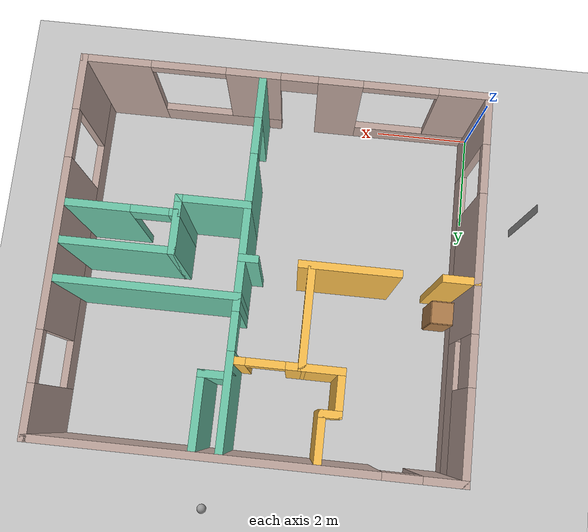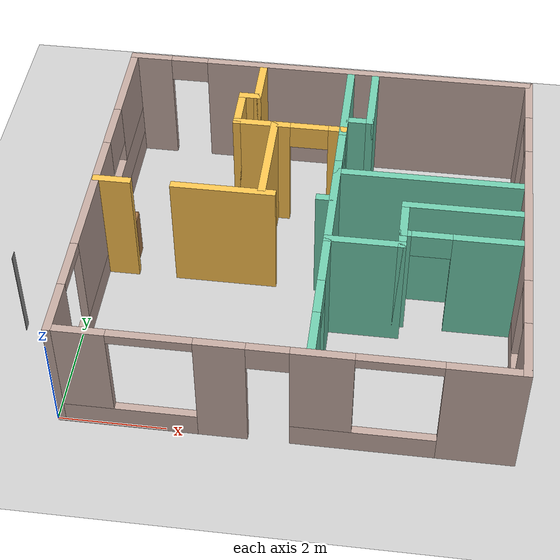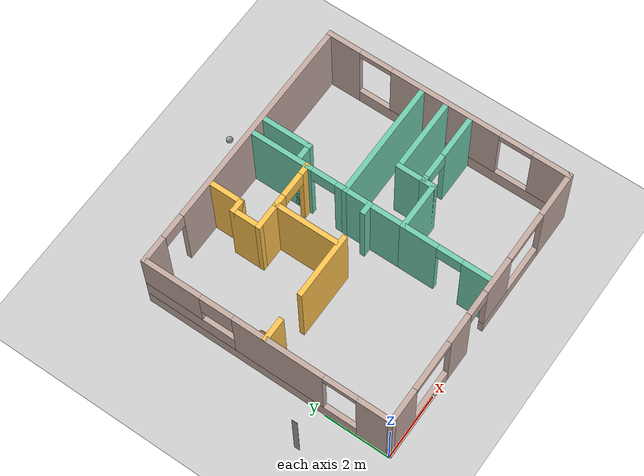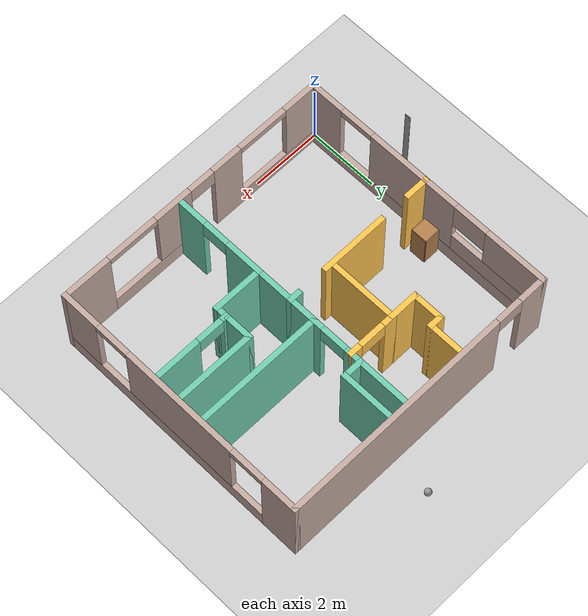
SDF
<sdf version="1.6">
 <world name="default">
  <model name="ground_plane">
   <static>1</static>
   <link name="link">
    <collision name="collision">
     <geometry><plane><normal>0 0 1</normal><size>100 100</size></plane></geometry>
     <surface>
      <contact><collide_bitmask>65535</collide_bitmask></contact>
      <friction><ode><mu>100</mu><mu2>50</mu2></ode></friction>
     </surface>
    </collision>
    <visual name="visual">
     <cast_shadows>0</cast_shadows>
     <geometry><plane><normal>0 0 1</normal><size>100 100</size></plane></geometry>
     <material>
      <script><uri>file://media/materials/scripts/gazebo.material</uri><name>Gazebo/Grey</name></script>
     </material>
    </visual>
   </link>
  </model>
  <model name="apartment">
   <pose>4.14003 3.78049 0 0 -0 0</pose>
   <link name="Door_1">
    <collision name="Door_1_Collision">
     <geometry><box><size>0.01 0.17 2</size></box></geometry>
     <pose>0 0 1 0 -0 0</pose>
    </collision>
    <visual name="Door_1_Visual">
     <pose>0 0 1 0 -0 0</pose>
     <geometry><box><size>0.01 0.17 2</size></box></geometry>
     <material>
      <script><uri>file://media/materials/scripts/gazebo.material</uri><name>Gazebo/Grey</name></script>
     </material>
    </visual>
    <pose>-5.25474 -1.71616 0 0 0 -3.11558</pose>
   </link>
   <link name="Wall_0">
    <pose>-0 3.75 0 0 -0 0</pose>
    <visual name="Wall_0_Visual_0">
     <pose>-3.7 0 1.25 0 -0 0</pose>
     <geometry><box><size>0.85 0.15 2.5</size></box></geometry>
     <material>
      <script><uri>file://media/materials/scripts/gazebo.material</uri><name>Gazebo/Grey</name></script>
      <ambient>0.760784 0.662745 0.627451 1</ambient>
     </material>
     <meta><layer>0</layer></meta>
    </visual>
    <collision name="Wall_0_Collision_0">
     <geometry><box><size>0.85 0.15 2.5</size></box></geometry>
     <pose>-3.7 0 1.25 0 -0 0</pose>
    </collision>
    <visual name="Wall_0_Visual_1">
     <pose>0.8 0 1.25 0 -0 0</pose>
     <geometry><box><size>6.65 0.15 2.5</size></box></geometry>
     <material>
      <script><uri>file://media/materials/scripts/gazebo.material</uri><name>Gazebo/Grey</name></script>
      <ambient>0.760784 0.662745 0.627451 1</ambient>
     </material>
     <meta><layer>0</layer></meta>
    </visual>
    <collision name="Wall_0_Collision_1">
     <geometry><box><size>6.65 0.15 2.5</size></box></geometry>
     <pose>0.8 0 1.25 0 -0 0</pose>
    </collision>
    <visual name="Wall_0_Visual_2">
     <pose>-2.9 0 2.25 0 -0 0</pose>
     <geometry><box><size>0.75 0.15 0.5</size></box></geometry>
     <material>
      <script><uri>file://media/materials/scripts/gazebo.material</uri><name>Gazebo/Grey</name></script>
      <ambient>0.760784 0.662745 0.627451 1</ambient>
     </material>
     <meta><layer>0</layer></meta>
    </visual>
    <collision name="Wall_0_Collision_2">
     <geometry><box><size>0.75 0.15 0.5</size></box></geometry>
     <pose>-2.9 0 2.25 0 -0 0</pose>
    </collision>
   </link>
   <link name="Wall_1">
    <pose>4.05 -0 0 0 -0 -1.5708</pose>
    <visual name="Wall_1_Visual_0">
     <pose>-3.2875 0 1.25 0 -0 0</pose>
     <geometry><box><size>1.075 0.15 2.5</size></box></geometry>
     <material>
      <script><uri>file://media/materials/scripts/gazebo.material</uri><name>Gazebo/Grey</name></script>
      <ambient>0.760784 0.662745 0.627451 1</ambient>
     </material>
     <meta><layer>0</layer></meta>
    </visual>
    <collision name="Wall_1_Collision_0">
     <geometry><box><size>1.075 0.15 2.5</size></box></geometry>
     <pose>-3.2875 0 1.25 0 -0 0</pose>
    </collision>
    <visual name="Wall_1_Visual_1">
     <pose>0.5375 0 0.25 0 -0 0</pose>
     <geometry><box><size>6.575 0.15 0.5</size></box></geometry>
     <material>
      <script><uri>file://media/materials/scripts/gazebo.material</uri><name>Gazebo/Grey</name></script>
      <ambient>0.760784 0.662745 0.627451 1</ambient>
     </material>
     <meta><layer>0</layer></meta>
    </visual>
    <collision name="Wall_1_Collision_1">
     <geometry><box><size>6.575 0.15 0.5</size></box></geometry>
     <pose>0.5375 0 0.25 0 -0 0</pose>
    </collision>
    <visual name="Wall_1_Visual_2">
     <pose>-0.050682 0 1.5 0 -0 0</pose>
     <geometry><box><size>3.39864 0.15 2</size></box></geometry>
     <material>
      <script><uri>file://media/materials/scripts/gazebo.material</uri><name>Gazebo/Grey</name></script>
      <ambient>0.760784 0.662745 0.627451 1</ambient>
     </material>
     <meta><layer>0</layer></meta>
    </visual>
    <collision name="Wall_1_Collision_2">
     <geometry><box><size>3.39864 0.15 2</size></box></geometry>
     <pose>-0.050682 0 1.5 0 -0 0</pose>
    </collision>
    <visual name="Wall_1_Visual_3">
     <pose>3.23682 0 1.5 0 -0 0</pose>
     <geometry><box><size>1.17636 0.15 2</size></box></geometry>
     <material>
      <script><uri>file://media/materials/scripts/gazebo.material</uri><name>Gazebo/Grey</name></script>
      <ambient>0.760784 0.662745 0.627451 1</ambient>
     </material>
     <meta><layer>0</layer></meta>
    </visual>
    <collision name="Wall_1_Collision_3">
     <geometry><box><size>1.17636 0.15 2</size></box></geometry>
     <pose>3.23682 0 1.5 0 -0 0</pose>
    </collision>
    <visual name="Wall_1_Visual_4">
     <pose>-2.25 0 2.4 0 -0 0</pose>
     <geometry><box><size>1 0.15 0.2</size></box></geometry>
     <material>
      <script><uri>file://media/materials/scripts/gazebo.material</uri><name>Gazebo/Grey</name></script>
      <ambient>0.760784 0.662745 0.627451 1</ambient>
     </material>
     <meta><layer>0</layer></meta>
    </visual>
    <collision name="Wall_1_Collision_4">
     <geometry><box><size>1 0.15 0.2</size></box></geometry>
     <pose>-2.25 0 2.4 0 -0 0</pose>
    </collision>
    <visual name="Wall_1_Visual_5">
     <pose>2.14864 0 2.4 0 -0 0</pose>
     <geometry><box><size>1 0.15 0.2</size></box></geometry>
     <material>
      <script><uri>file://media/materials/scripts/gazebo.material</uri><name>Gazebo/Grey</name></script>
      <ambient>0.760784 0.662745 0.627451 1</ambient>
     </material>
     <meta><layer>0</layer></meta>
    </visual>
    <collision name="Wall_1_Collision_5">
     <geometry><box><size>1 0.15 0.2</size></box></geometry>
     <pose>2.14864 0 2.4 0 -0 0</pose>
    </collision>
   </link>
   <link name="Wall_10">
    <collision name="Wall_10_Collision">
     <geometry><box><size>0.9 0.15 2.5</size></box></geometry>
     <pose>0 0 1.25 0 -0 0</pose>
    </collision>
    <visual name="Wall_10_Visual">
     <pose>0 0 1.25 0 -0 0</pose>
     <geometry><box><size>0.9 0.15 2.5</size></box></geometry>
     <material>
      <script><uri>file://media/materials/scripts/gazebo.material</uri><name>Gazebo/Grey</name></script>
      <ambient>0.435294 0.796078 0.67451 1</ambient>
     </material>
     <meta><layer>0</layer></meta>
    </visual>
    <pose>1.8 -0.375 0 0 -0 1.5708</pose>
   </link>
   <link name="Wall_11">
    <collision name="Wall_11_Collision">
     <geometry><box><size>2.25 0.15 2.5</size></box></geometry>
     <pose>0 0 1.25 0 -0 0</pose>
    </collision>
    <visual name="Wall_11_Visual">
     <pose>0 0 1.25 0 -0 0</pose>
     <geometry><box><size>2.25 0.15 2.5</size></box></geometry>
     <material>
      <script><uri>file://media/materials/scripts/gazebo.material</uri><name>Gazebo/Grey</name></script>
      <ambient>0.435294 0.796078 0.67451 1</ambient>
     </material>
     <meta><layer>0</layer></meta>
    </visual>
    <pose>2.85 -0 0 0 -0 0</pose>
   </link>
   <link name="Wall_13">
    <collision name="Wall_13_Collision">
     <geometry><box><size>3.6 0.15 2.5</size></box></geometry>
     <pose>0 0 1.25 0 -0 0</pose>
    </collision>
    <visual name="Wall_13_Visual">
     <pose>0 0 1.25 0 -0 0</pose>
     <geometry><box><size>3.6 0.15 2.5</size></box></geometry>
     <material>
      <script><uri>file://media/materials/scripts/gazebo.material</uri><name>Gazebo/Grey</name></script>
      <ambient>0.435294 0.796078 0.67451 1</ambient>
     </material>
     <meta><layer>0</layer></meta>
    </visual>
    <pose>2.175 0.75 0 0 -0 3.14159</pose>
   </link>
   <link name="Wall_14">
    <collision name="Wall_14_Collision">
     <geometry><box><size>1.95 0.15 2.5</size></box></geometry>
     <pose>0 0 1.25 0 -0 0</pose>
    </collision>
    <visual name="Wall_14_Visual">
     <pose>0 0 1.25 0 -0 0</pose>
     <geometry><box><size>1.95 0.15 2.5</size></box></geometry>
     <material>
      <script><uri>file://media/materials/scripts/gazebo.material</uri><name>Gazebo/Grey</name></script>
      <ambient>0.435294 0.796078 0.67451 1</ambient>
     </material>
     <meta><layer>0</layer></meta>
    </visual>
    <pose>0.45 -0.15 0 0 -0 -1.5708</pose>
   </link>
   <link name="Wall_16">
    <pose>0.45 2.175 0 0 -0 1.5708</pose>
    <visual name="Wall_16_Visual_0">
     <pose>-1.31932 0 1.25 0 -0 0</pose>
     <geometry><box><size>0.361363 0.15 2.5</size></box></geometry>
     <material>
      <script><uri>file://media/materials/scripts/gazebo.material</uri><name>Gazebo/Grey</name></script>
      <ambient>0.435294 0.796078 0.67451 1</ambient>
     </material>
     <meta><layer>0</layer></meta>
    </visual>
    <collision name="Wall_16_Collision_0">
     <geometry><box><size>0.361363 0.15 2.5</size></box></geometry>
     <pose>-1.31932 0 1.25 0 -0 0</pose>
    </collision>
    <visual name="Wall_16_Visual_1">
     <pose>0.555682 0 1.25 0 -0 0</pose>
     <geometry><box><size>1.88864 0.15 2.5</size></box></geometry>
     <material>
      <script><uri>file://media/materials/scripts/gazebo.material</uri><name>Gazebo/Grey</name></script>
      <ambient>0.435294 0.796078 0.67451 1</ambient>
     </material>
     <meta><layer>0</layer></meta>
    </visual>
    <collision name="Wall_16_Collision_1">
     <geometry><box><size>1.88864 0.15 2.5</size></box></geometry>
     <pose>0.555682 0 1.25 0 -0 0</pose>
    </collision>
    <visual name="Wall_16_Visual_2">
     <pose>-0.763637 0 2.25 0 -0 0</pose>
     <geometry><box><size>0.75 0.15 0.5</size></box></geometry>
     <material>
      <script><uri>file://media/materials/scripts/gazebo.material</uri><name>Gazebo/Grey</name></script>
      <ambient>0.435294 0.796078 0.67451 1</ambient>
     </material>
     <meta><layer>0</layer></meta>
    </visual>
    <collision name="Wall_16_Collision_2">
     <geometry><box><size>0.75 0.15 0.5</size></box></geometry>
     <pose>-0.763637 0 2.25 0 -0 0</pose>
    </collision>
   </link>
   <link name="Wall_18">
    <collision name="Wall_18_Collision">
     <geometry><box><size>0.65 0.15 2.5</size></box></geometry>
     <pose>0 0 1.25 0 -0 0</pose>
    </collision>
    <visual name="Wall_18_Visual">
     <pose>0 0 1.25 0 -0 0</pose>
     <geometry><box><size>0.65 0.15 2.5</size></box></geometry>
     <material>
      <script><uri>file://media/materials/scripts/gazebo.material</uri><name>Gazebo/Grey</name></script>
      <ambient>0.435294 0.796078 0.67451 1</ambient>
     </material>
     <meta><layer>0</layer></meta>
    </visual>
    <pose>0.7 2.25 0 0 -0 0</pose>
   </link>
   <link name="Wall_19">
    <collision name="Wall_19_Collision">
     <geometry><box><size>1.5 0.15 2.5</size></box></geometry>
     <pose>0 0 1.25 0 -0 0</pose>
    </collision>
    <visual name="Wall_19_Visual">
     <pose>0 0 1.25 0 -0 0</pose>
     <geometry><box><size>1.5 0.15 2.5</size></box></geometry>
     <material>
      <script><uri>file://media/materials/scripts/gazebo.material</uri><name>Gazebo/Grey</name></script>
      <ambient>0.435294 0.796078 0.67451 1</ambient>
     </material>
     <meta><layer>0</layer></meta>
    </visual>
    <pose>0.95 2.925 0 0 -0 1.5708</pose>
   </link>
   <link name="Wall_2">
    <pose>-0 -3.75 0 0 -0 3.14159</pose>
    <visual name="Wall_2_Visual_0">
     <pose>-3.4125 0 1.25 0 -0 0</pose>
     <geometry><box><size>1.425 0.15 2.5</size></box></geometry>
     <material>
      <script><uri>file://media/materials/scripts/gazebo.material</uri><name>Gazebo/Grey</name></script>
      <ambient>0.760784 0.662745 0.627451 1</ambient>
     </material>
     <meta><layer>0</layer></meta>
    </visual>
    <collision name="Wall_2_Collision_0">
     <geometry><box><size>1.425 0.15 2.5</size></box></geometry>
     <pose>-3.4125 0 1.25 0 -0 0</pose>
    </collision>
    <visual name="Wall_2_Visual_1">
     <pose>1.1 0 1.25 0 -0 0</pose>
     <geometry><box><size>0.899991 0.15 2.5</size></box></geometry>
     <material>
      <script><uri>file://media/materials/scripts/gazebo.material</uri><name>Gazebo/Grey</name></script>
      <ambient>0.760784 0.662745 0.627451 1</ambient>
     </material>
     <meta><layer>0</layer></meta>
    </visual>
    <collision name="Wall_2_Collision_1">
     <geometry><box><size>0.899991 0.15 2.5</size></box></geometry>
     <pose>1.1 0 1.25 0 -0 0</pose>
    </collision>
    <visual name="Wall_2_Visual_2">
     <pose>-1.4 0 0.25 0 -0 0</pose>
     <geometry><box><size>2.60001 0.15 0.5</size></box></geometry>
     <material>
      <script><uri>file://media/materials/scripts/gazebo.material</uri><name>Gazebo/Grey</name></script>
      <ambient>0.760784 0.662745 0.627451 1</ambient>
     </material>
     <meta><layer>0</layer></meta>
    </visual>
    <collision name="Wall_2_Collision_2">
     <geometry><box><size>2.60001 0.15 0.5</size></box></geometry>
     <pose>-1.4 0 0.25 0 -0 0</pose>
    </collision>
    <visual name="Wall_2_Visual_3">
     <pose>2.8375 0 0.25 0 -0 0</pose>
     <geometry><box><size>2.575 0.15 0.5</size></box></geometry>
     <material>
      <script><uri>file://media/materials/scripts/gazebo.material</uri><name>Gazebo/Grey</name></script>
      <ambient>0.760784 0.662745 0.627451 1</ambient>
     </material>
     <meta><layer>0</layer></meta>
    </visual>
    <collision name="Wall_2_Collision_3">
     <geometry><box><size>2.575 0.15 0.5</size></box></geometry>
     <pose>2.8375 0 0.25 0 -0 0</pose>
    </collision>
    <visual name="Wall_2_Visual_4">
     <pose>-0.649995 0 1.5 0 -0 0</pose>
     <geometry><box><size>1.10001 0.15 2</size></box></geometry>
     <material>
      <script><uri>file://media/materials/scripts/gazebo.material</uri><name>Gazebo/Grey</name></script>
      <ambient>0.760784 0.662745 0.627451 1</ambient>
     </material>
     <meta><layer>0</layer></meta>
    </visual>
    <collision name="Wall_2_Collision_4">
     <geometry><box><size>1.10001 0.15 2</size></box></geometry>
     <pose>-0.649995 0 1.5 0 -0 0</pose>
    </collision>
    <visual name="Wall_2_Visual_5">
     <pose>-0.649995 0 1.5 0 -0 0</pose>
     <geometry><box><size>1.10001 0.15 2</size></box></geometry>
     <material>
      <script><uri>file://media/materials/scripts/gazebo.material</uri><name>Gazebo/Grey</name></script>
      <ambient>0.760784 0.662745 0.627451 1</ambient>
     </material>
     <meta><layer>0</layer></meta>
    </visual>
    <collision name="Wall_2_Collision_5">
     <geometry><box><size>1.10001 0.15 2</size></box></geometry>
     <pose>-0.649995 0 1.5 0 -0 0</pose>
    </collision>
    <visual name="Wall_2_Visual_6">
     <pose>3.5875 0 1.5 0 -0 0</pose>
     <geometry><box><size>1.075 0.15 2</size></box></geometry>
     <material>
      <script><uri>file://media/materials/scripts/gazebo.material</uri><name>Gazebo/Grey</name></script>
      <ambient>0.760784 0.662745 0.627451 1</ambient>
     </material>
     <meta><layer>0</layer></meta>
    </visual>
    <collision name="Wall_2_Collision_6">
     <geometry><box><size>1.075 0.15 2</size></box></geometry>
     <pose>3.5875 0 1.5 0 -0 0</pose>
    </collision>
    <visual name="Wall_2_Visual_7">
     <pose>0.275009 0 2.25 0 -0 0</pose>
     <geometry><box><size>0.75 0.15 0.5</size></box></geometry>
     <material>
      <script><uri>file://media/materials/scripts/gazebo.material</uri><name>Gazebo/Grey</name></script>
      <ambient>0.760784 0.662745 0.627451 1</ambient>
     </material>
     <meta><layer>0</layer></meta>
    </visual>
    <collision name="Wall_2_Collision_7">
     <geometry><box><size>0.75 0.15 0.5</size></box></geometry>
     <pose>0.275009 0 2.25 0 -0 0</pose>
    </collision>
    <visual name="Wall_2_Visual_8">
     <pose>0.275009 0 2.25 0 -0 0</pose>
     <geometry><box><size>0.75 0.15 0.5</size></box></geometry>
     <material>
      <script><uri>file://media/materials/scripts/gazebo.material</uri><name>Gazebo/Grey</name></script>
      <ambient>0.760784 0.662745 0.627451 1</ambient>
     </material>
     <meta><layer>0</layer></meta>
    </visual>
    <collision name="Wall_2_Collision_8">
     <geometry><box><size>0.75 0.15 0.5</size></box></geometry>
     <pose>0.275009 0 2.25 0 -0 0</pose>
    </collision>
    <visual name="Wall_2_Visual_9">
     <pose>-1.95 0 2.4 0 -0 0</pose>
     <geometry><box><size>1.5 0.15 0.2</size></box></geometry>
     <material>
      <script><uri>file://media/materials/scripts/gazebo.material</uri><name>Gazebo/Grey</name></script>
      <ambient>0.760784 0.662745 0.627451 1</ambient>
     </material>
     <meta><layer>0</layer></meta>
    </visual>
    <collision name="Wall_2_Collision_9">
     <geometry><box><size>1.5 0.15 0.2</size></box></geometry>
     <pose>-1.95 0 2.4 0 -0 0</pose>
    </collision>
    <visual name="Wall_2_Visual_10">
     <pose>2.3 0 2.4 0 -0 0</pose>
     <geometry><box><size>1.5 0.15 0.2</size></box></geometry>
     <material>
      <script><uri>file://media/materials/scripts/gazebo.material</uri><name>Gazebo/Grey</name></script>
      <ambient>0.760784 0.662745 0.627451 1</ambient>
     </material>
     <meta><layer>0</layer></meta>
    </visual>
    <collision name="Wall_2_Collision_10">
     <geometry><box><size>1.5 0.15 0.2</size></box></geometry>
     <pose>2.3 0 2.4 0 -0 0</pose>
    </collision>
   </link>
   <link name="Wall_25">
    <collision name="Wall_25_Collision">
     <geometry><box><size>0.9 0.15 2.5</size></box></geometry>
     <pose>0 0 1.25 0 -0 0</pose>
    </collision>
    <visual name="Wall_25_Visual">
     <pose>0 0 1.25 0 -0 0</pose>
     <geometry><box><size>0.9 0.15 2.5</size></box></geometry>
     <material>
      <script><uri>file://media/materials/scripts/gazebo.material</uri><name>Gazebo/Grey</name></script>
      <ambient>1 0.764706 0.305882 1</ambient>
     </material>
     <meta><layer>0</layer></meta>
    </visual>
    <pose>-1.275 1.95 0 0 -0 3.14159</pose>
   </link>
   <link name="Wall_26">
    <collision name="Wall_26_Collision">
     <geometry><box><size>0.95 0.15 2.5</size></box></geometry>
     <pose>0 0 1.25 0 -0 0</pose>
    </collision>
    <visual name="Wall_26_Visual">
     <pose>0 0 1.25 0 -0 0</pose>
     <geometry><box><size>0.95 0.15 2.5</size></box></geometry>
     <material>
      <script><uri>file://media/materials/scripts/gazebo.material</uri><name>Gazebo/Grey</name></script>
      <ambient>1 0.764706 0.305882 1</ambient>
     </material>
     <meta><layer>0</layer></meta>
    </visual>
    <pose>-1.65 2.35 0 0 -0 1.5708</pose>
   </link>
   <link name="Wall_27">
    <collision name="Wall_27_Collision">
     <geometry><box><size>0.45 0.15 2.5</size></box></geometry>
     <pose>0 0 1.25 0 -0 0</pose>
    </collision>
    <visual name="Wall_27_Visual">
     <pose>0 0 1.25 0 -0 0</pose>
     <geometry><box><size>0.45 0.15 2.5</size></box></geometry>
     <material>
      <script><uri>file://media/materials/scripts/gazebo.material</uri><name>Gazebo/Grey</name></script>
      <ambient>1 0.764706 0.305882 1</ambient>
     </material>
     <meta><layer>0</layer></meta>
    </visual>
    <pose>-1.5 2.75 0 0 -0 0</pose>
   </link>
   <link name="Wall_28">
    <collision name="Wall_28_Collision">
     <geometry><box><size>1 0.15 2.5</size></box></geometry>
     <pose>0 0 1.25 0 -0 0</pose>
    </collision>
    <visual name="Wall_28_Visual">
     <pose>0 0 1.25 0 -0 0</pose>
     <geometry><box><size>1 0.15 2.5</size></box></geometry>
     <material>
      <script><uri>file://media/materials/scripts/gazebo.material</uri><name>Gazebo/Grey</name></script>
      <ambient>1 0.764706 0.305882 1</ambient>
     </material>
     <meta><layer>0</layer></meta>
    </visual>
    <pose>-1.35 3.175 0 0 -0 1.5708</pose>
   </link>
   <link name="Wall_3">
    <pose>-4.05 -0 0 0 -0 1.5708</pose>
    <visual name="Wall_3_Visual_0">
     <pose>-3.2875 0 1.25 0 -0 0</pose>
     <geometry><box><size>1.075 0.15 2.5</size></box></geometry>
     <material>
      <script><uri>file://media/materials/scripts/gazebo.material</uri><name>Gazebo/Grey</name></script>
      <ambient>0.760784 0.662745 0.627451 1</ambient>
     </material>
     <meta><layer>0</layer></meta>
    </visual>
    <collision name="Wall_3_Collision_0">
     <geometry><box><size>1.075 0.15 2.5</size></box></geometry>
     <pose>-3.2875 0 1.25 0 -0 0</pose>
    </collision>
    <visual name="Wall_3_Visual_1">
     <pose>0.5375 0 0.25 0 -0 0</pose>
     <geometry><box><size>6.575 0.15 0.5</size></box></geometry>
     <material>
      <script><uri>file://media/materials/scripts/gazebo.material</uri><name>Gazebo/Grey</name></script>
      <ambient>0.760784 0.662745 0.627451 1</ambient>
     </material>
     <meta><layer>0</layer></meta>
    </visual>
    <collision name="Wall_3_Collision_1">
     <geometry><box><size>6.575 0.15 0.5</size></box></geometry>
     <pose>0.5375 0 0.25 0 -0 0</pose>
    </collision>
    <visual name="Wall_3_Visual_2">
     <pose>-0.375 0 1.5 0 -0 0</pose>
     <geometry><box><size>2.75 0.15 2</size></box></geometry>
     <material>
      <script><uri>file://media/materials/scripts/gazebo.material</uri><name>Gazebo/Grey</name></script>
      <ambient>0.760784 0.662745 0.627451 1</ambient>
     </material>
     <meta><layer>0</layer></meta>
    </visual>
    <collision name="Wall_3_Collision_2">
     <geometry><box><size>2.75 0.15 2</size></box></geometry>
     <pose>-0.375 0 1.5 0 -0 0</pose>
    </collision>
    <visual name="Wall_3_Visual_3">
     <pose>2.4125 0 0.825 0 -0 0</pose>
     <geometry><box><size>2.825 0.15 0.65</size></box></geometry>
     <material>
      <script><uri>file://media/materials/scripts/gazebo.material</uri><name>Gazebo/Grey</name></script>
      <ambient>0.760784 0.662745 0.627451 1</ambient>
     </material>
     <meta><layer>0</layer></meta>
    </visual>
    <collision name="Wall_3_Collision_3">
     <geometry><box><size>2.825 0.15 0.65</size></box></geometry>
     <pose>2.4125 0 0.825 0 -0 0</pose>
    </collision>
    <visual name="Wall_3_Visual_4">
     <pose>2.9125 0 1.825 0 -0 0</pose>
     <geometry><box><size>1.825 0.15 1.35</size></box></geometry>
     <material>
      <script><uri>file://media/materials/scripts/gazebo.material</uri><name>Gazebo/Grey</name></script>
      <ambient>0.760784 0.662745 0.627451 1</ambient>
     </material>
     <meta><layer>0</layer></meta>
    </visual>
    <collision name="Wall_3_Collision_4">
     <geometry><box><size>1.825 0.15 1.35</size></box></geometry>
     <pose>2.9125 0 1.825 0 -0 0</pose>
    </collision>
    <visual name="Wall_3_Visual_5">
     <pose>1.5 0 2.075 0 -0 0</pose>
     <geometry><box><size>1 0.15 0.85</size></box></geometry>
     <material>
      <script><uri>file://media/materials/scripts/gazebo.material</uri><name>Gazebo/Grey</name></script>
      <ambient>0.760784 0.662745 0.627451 1</ambient>
     </material>
     <meta><layer>0</layer></meta>
    </visual>
    <collision name="Wall_3_Collision_5">
     <geometry><box><size>1 0.15 0.85</size></box></geometry>
     <pose>1.5 0 2.075 0 -0 0</pose>
    </collision>
    <visual name="Wall_3_Visual_6">
     <pose>-2.25 0 2.4 0 -0 0</pose>
     <geometry><box><size>1 0.15 0.2</size></box></geometry>
     <material>
      <script><uri>file://media/materials/scripts/gazebo.material</uri><name>Gazebo/Grey</name></script>
      <ambient>0.760784 0.662745 0.627451 1</ambient>
     </material>
     <meta><layer>0</layer></meta>
    </visual>
    <collision name="Wall_3_Collision_6">
     <geometry><box><size>1 0.15 0.2</size></box></geometry>
     <pose>-2.25 0 2.4 0 -0 0</pose>
    </collision>
   </link>
   <link name="Wall_33">
    <collision name="Wall_33_Collision">
     <geometry><box><size>2 0.15 2.5</size></box></geometry>
     <pose>0 0 1.25 0 -0 0</pose>
    </collision>
    <visual name="Wall_33_Visual">
     <pose>0 0 1.25 0 -0 0</pose>
     <geometry><box><size>2 0.15 2.5</size></box></geometry>
     <material>
      <script><uri>file://media/materials/scripts/gazebo.material</uri><name>Gazebo/Grey</name></script>
      <ambient>1 0.764706 0.305882 1</ambient>
     </material>
     <meta><layer>0</layer></meta>
    </visual>
    <pose>-1.625 -0 0 0 -0 3.14159</pose>
   </link>
   <link name="Wall_35">
    <collision name="Wall_35_Collision">
     <geometry><box><size>0.735 0.15 2.5</size></box></geometry>
     <pose>0 0 1.25 0 -0 0</pose>
    </collision>
    <visual name="Wall_35_Visual">
     <pose>0 0 1.25 0 -0 0</pose>
     <geometry><box><size>0.735 0.15 2.5</size></box></geometry>
     <material>
      <script><uri>file://media/materials/scripts/gazebo.material</uri><name>Gazebo/Grey</name></script>
      <ambient>1 0.764706 0.305882 1</ambient>
     </material>
     <meta><layer>0</layer></meta>
    </visual>
    <pose>-3.7425 -0 0 0 -0 0</pose>
   </link>
   <link name="Wall_38">
    <collision name="Wall_38_Collision">
     <geometry><box><size>0.4 0.15 2.5</size></box></geometry>
     <pose>0 0 1.25 0 -0 0</pose>
    </collision>
    <visual name="Wall_38_Visual">
     <pose>0 0 1.25 0 -0 0</pose>
     <geometry><box><size>0.4 0.15 2.5</size></box></geometry>
     <material>
      <script><uri>file://media/materials/scripts/gazebo.material</uri><name>Gazebo/Grey</name></script>
      <ambient>0.435294 0.796078 0.67451 1</ambient>
     </material>
     <meta><layer>0</layer></meta>
    </visual>
    <pose>0.325 -0 0 0 -0 3.14159</pose>
   </link>
   <link name="Wall_40">
    <collision name="Wall_40_Collision">
     <geometry><box><size>2 0.15 2.5</size></box></geometry>
     <pose>0 0 1.25 0 -0 0</pose>
    </collision>
    <visual name="Wall_40_Visual">
     <pose>0 0 1.25 0 -0 0</pose>
     <geometry><box><size>2 0.15 2.5</size></box></geometry>
     <material>
      <script><uri>file://media/materials/scripts/gazebo.material</uri><name>Gazebo/Grey</name></script>
      <ambient>1 0.764706 0.305882 1</ambient>
     </material>
     <meta><layer>0</layer></meta>
    </visual>
    <pose>-0.9 1.025 0 0 -0 -1.5708</pose>
   </link>
   <link name="Wall_42">
    <pose>-0.225 1.95 0 0 -0 0</pose>
    <visual name="Wall_42_Visual_0">
     <pose>-0.557505 0 1.25 0 -0 0</pose>
     <geometry><box><size>0.384991 0.15 2.5</size></box></geometry>
     <material>
      <script><uri>file://media/materials/scripts/gazebo.material</uri><name>Gazebo/Grey</name></script>
      <ambient>1 0.764706 0.305882 1</ambient>
     </material>
     <meta><layer>0</layer></meta>
    </visual>
    <collision name="Wall_42_Collision_0">
     <geometry><box><size>0.384991 0.15 2.5</size></box></geometry>
     <pose>-0.557505 0 1.25 0 -0 0</pose>
    </collision>
    <visual name="Wall_42_Visual_1">
     <pose>0.567495 0 1.25 0 -0 0</pose>
     <geometry><box><size>0.365009 0.15 2.5</size></box></geometry>
     <material>
      <script><uri>file://media/materials/scripts/gazebo.material</uri><name>Gazebo/Grey</name></script>
      <ambient>1 0.764706 0.305882 1</ambient>
     </material>
     <meta><layer>0</layer></meta>
    </visual>
    <collision name="Wall_42_Collision_1">
     <geometry><box><size>0.365009 0.15 2.5</size></box></geometry>
     <pose>0.567495 0 1.25 0 -0 0</pose>
    </collision>
    <visual name="Wall_42_Visual_2">
     <pose>0.009991 0 2.25 0 -0 0</pose>
     <geometry><box><size>0.75 0.15 0.5</size></box></geometry>
     <material>
      <script><uri>file://media/materials/scripts/gazebo.material</uri><name>Gazebo/Grey</name></script>
      <ambient>1 0.764706 0.305882 1</ambient>
     </material>
     <meta><layer>0</layer></meta>
    </visual>
    <collision name="Wall_42_Collision_2">
     <geometry><box><size>0.75 0.15 0.5</size></box></geometry>
     <pose>0.009991 0 2.25 0 -0 0</pose>
    </collision>
   </link>
   <link name="Wall_5">
    <pose>0.45 -2.325 0 0 -0 1.5708</pose>
    <visual name="Wall_5_Visual_0">
     <pose>-0.934318 0 1.25 0 -0 0</pose>
     <geometry><box><size>0.831364 0.15 2.5</size></box></geometry>
     <material>
      <script><uri>file://media/materials/scripts/gazebo.material</uri><name>Gazebo/Grey</name></script>
      <ambient>0.435294 0.796078 0.67451 1</ambient>
     </material>
     <meta><layer>0</layer></meta>
    </visual>
    <collision name="Wall_5_Collision_0">
     <geometry><box><size>0.831364 0.15 2.5</size></box></geometry>
     <pose>-0.934318 0 1.25 0 -0 0</pose>
    </collision>
    <visual name="Wall_5_Visual_1">
     <pose>0.790682 0 1.25 0 -0 0</pose>
     <geometry><box><size>1.11864 0.15 2.5</size></box></geometry>
     <material>
      <script><uri>file://media/materials/scripts/gazebo.material</uri><name>Gazebo/Grey</name></script>
      <ambient>0.435294 0.796078 0.67451 1</ambient>
     </material>
     <meta><layer>0</layer></meta>
    </visual>
    <collision name="Wall_5_Collision_1">
     <geometry><box><size>1.11864 0.15 2.5</size></box></geometry>
     <pose>0.790682 0 1.25 0 -0 0</pose>
    </collision>
    <visual name="Wall_5_Visual_2">
     <pose>-0.143636 0 2.25 0 -0 0</pose>
     <geometry><box><size>0.75 0.15 0.5</size></box></geometry>
     <material>
      <script><uri>file://media/materials/scripts/gazebo.material</uri><name>Gazebo/Grey</name></script>
      <ambient>0.435294 0.796078 0.67451 1</ambient>
     </material>
     <meta><layer>0</layer></meta>
    </visual>
    <collision name="Wall_5_Collision_2">
     <geometry><box><size>0.75 0.15 0.5</size></box></geometry>
     <pose>-0.143636 0 2.25 0 -0 0</pose>
    </collision>
   </link>
   <link name="Wall_6">
    <collision name="Wall_6_Collision">
     <geometry><box><size>1.5 0.15 2.5</size></box></geometry>
     <pose>0 0 1.25 0 -0 0</pose>
    </collision>
    <visual name="Wall_6_Visual">
     <pose>0 0 1.25 0 -0 0</pose>
     <geometry><box><size>1.5 0.15 2.5</size></box></geometry>
     <material>
      <script><uri>file://media/materials/scripts/gazebo.material</uri><name>Gazebo/Grey</name></script>
      <ambient>0.435294 0.796078 0.67451 1</ambient>
     </material>
     <meta><layer>0</layer></meta>
    </visual>
    <pose>1.125 -1.05 0 0 -0 0</pose>
   </link>
   <link name="Wall_7">
    <collision name="Wall_7_Collision">
     <geometry><box><size>0.45 0.15 2.5</size></box></geometry>
     <pose>0 0 1.25 0 -0 0</pose>
    </collision>
    <visual name="Wall_7_Visual">
     <pose>0 0 1.25 0 -0 0</pose>
     <geometry><box><size>0.45 0.15 2.5</size></box></geometry>
     <material>
      <script><uri>file://media/materials/scripts/gazebo.material</uri><name>Gazebo/Grey</name></script>
      <ambient>0.435294 0.796078 0.67451 1</ambient>
     </material>
     <meta><layer>0</layer></meta>
    </visual>
    <pose>1.8 -0.9 0 0 -0 1.5708</pose>
   </link>
   <link name="Wall_8">
    <pose>2.85 -0.75 0 0 -0 0</pose>
    <visual name="Wall_8_Visual_0">
     <pose>-1.01319 0 1.25 0 -0 0</pose>
     <geometry><box><size>0.223613 0.15 2.5</size></box></geometry>
     <material>
      <script><uri>file://media/materials/scripts/gazebo.material</uri><name>Gazebo/Grey</name></script>
      <ambient>0.435294 0.796078 0.67451 1</ambient>
     </material>
     <meta><layer>0</layer></meta>
    </visual>
    <collision name="Wall_8_Collision_0">
     <geometry><box><size>0.223613 0.15 2.5</size></box></geometry>
     <pose>-1.01319 0 1.25 0 -0 0</pose>
    </collision>
    <visual name="Wall_8_Visual_1">
     <pose>0.486807 0 1.25 0 -0 0</pose>
     <geometry><box><size>1.27639 0.15 2.5</size></box></geometry>
     <material>
      <script><uri>file://media/materials/scripts/gazebo.material</uri><name>Gazebo/Grey</name></script>
      <ambient>0.435294 0.796078 0.67451 1</ambient>
     </material>
     <meta><layer>0</layer></meta>
    </visual>
    <collision name="Wall_8_Collision_1">
     <geometry><box><size>1.27639 0.15 2.5</size></box></geometry>
     <pose>0.486807 0 1.25 0 -0 0</pose>
    </collision>
    <visual name="Wall_8_Visual_2">
     <pose>-0.526387 0 2.25 0 -0 0</pose>
     <geometry><box><size>0.75 0.15 0.5</size></box></geometry>
     <material>
      <script><uri>file://media/materials/scripts/gazebo.material</uri><name>Gazebo/Grey</name></script>
      <ambient>0.435294 0.796078 0.67451 1</ambient>
     </material>
     <meta><layer>0</layer></meta>
    </visual>
    <collision name="Wall_8_Collision_2">
     <geometry><box><size>0.75 0.15 0.5</size></box></geometry>
     <pose>-0.526387 0 2.25 0 -0 0</pose>
    </collision>
   </link>
   <static>1</static>
  </model>
  <model name="cabinet">
   <static>1</static>
   <link name="cabinet_bottom_plate">
    <inertial>
     <pose>0 0 -1 0 -0 0</pose>
     <inertia><ixx>2.05</ixx><ixy>0</ixy><ixz>0</ixz><iyy>2.05</iyy><iyz>0</iyz><izz>2.05</izz></inertia>
     <mass>25</mass>
    </inertial>
    <collision name="cabinet_bottom_plate_geom">
     <pose>0 0 0.01 0 -0 0</pose>
     <geometry><box><size>0.45 0.45 0.02</size></box></geometry>
    </collision>
    <visual name="cabinet_bottom_plate_geom_visual">
     <pose>0 0 0.01 0 -0 0</pose>
     <geometry><box><size>0.45 0.45 0.02</size></box></geometry>
     <material>
      <script><uri>file://media/materials/scripts/gazebo.material</uri><name>Gazebo/Wood</name></script>
     </material>
    </visual>
    <collision name="cabinet_bottom_plate_geom_cabinet_back_plate">
     <pose>0.235 0 0.51 0 -0 0</pose>
     <geometry><box><size>0.02 0.45 1.02</size></box></geometry>
    </collision>
    <visual name="cabinet_bottom_plate_geom_cabinet_back_plate_visual">
     <pose>0.235 0 0.51 0 -0 0</pose>
     <geometry><box><size>0.02 0.45 1.02</size></box></geometry>
     <material>
      <script><uri>file://media/materials/scripts/gazebo.material</uri><name>Gazebo/Wood</name></script>
     </material>
    </visual>
    <collision name="cabinet_bottom_plate_geom_cabinet_left_plate">
     <pose>0 0.235 0.51 0 -0 0</pose>
     <geometry><box><size>0.45 0.02 1.02</size></box></geometry>
    </collision>
    <visual name="cabinet_bottom_plate_geom_cabinet_left_plate_visual">
     <pose>0 0.235 0.51 0 -0 0</pose>
     <geometry><box><size>0.45 0.02 1.02</size></box></geometry>
     <material>
      <script><uri>file://media/materials/scripts/gazebo.material</uri><name>Gazebo/Wood</name></script>
     </material>
    </visual>
    <collision name="cabinet_bottom_plate_geom_cabinet_middle_plate">
     <pose>0 0 0.51 0 -0 0</pose>
     <geometry><box><size>0.45 0.45 0.02</size></box></geometry>
    </collision>
    <visual name="cabinet_bottom_plate_geom_cabinet_middle_plate_visual">
     <pose>0 0 0.51 0 -0 0</pose>
     <geometry><box><size>0.45 0.45 0.02</size></box></geometry>
     <material>
      <script><uri>file://media/materials/scripts/gazebo.material</uri><name>Gazebo/Wood</name></script>
     </material>
    </visual>
    <collision name="cabinet_bottom_plate_geom_cabinet_right_plate">
     <pose>0 -0.235 0.51 0 -0 0</pose>
     <geometry><box><size>0.45 0.02 1.02</size></box></geometry>
    </collision>
    <visual name="cabinet_bottom_plate_geom_cabinet_right_plate_visual">
     <pose>0 -0.235 0.51 0 -0 0</pose>
     <geometry><box><size>0.45 0.02 1.02</size></box></geometry>
     <material>
      <script><uri>file://media/materials/scripts/gazebo.material</uri><name>Gazebo/Wood</name></script>
     </material>
    </visual>
    <collision name="cabinet_bottom_plate_geom_cabinet_top_plate">
     <pose>0 0 1.01 0 -0 0</pose>
     <geometry><box><size>0.45 0.45 0.02</size></box></geometry>
    </collision>
    <visual name="cabinet_bottom_plate_geom_cabinet_top_plate_visual">
     <pose>0 0 1.01 0 -0 0</pose>
     <geometry><box><size>0.45 0.45 0.02</size></box></geometry>
     <material>
      <script><uri>file://media/materials/scripts/gazebo.material</uri><name>Gazebo/Wood</name></script>
     </material>
    </visual>
   </link>
   <pose>0.43974 4.2 0 0 -0 0</pose>
  </model>
  <model name="white_ball">
   <link name="link_0">
    <inertial>
     <mass>1</mass>
     <inertia><ixx>0.1</ixx><ixy>0</ixy><ixz>0</ixz><iyy>0.1</iyy><iyz>0</iyz><izz>0.1</izz></inertia>
    </inertial>
    <visual name="visual">
     <geometry><sphere><radius>0.1</radius></sphere></geometry>
     <material>
      <lighting>1</lighting>
      <script><uri>file://media/materials/scripts/gazebo.material</uri><name>Gazebo/Grey</name></script>
      <shader type="pixel"><normal_map>__default__</normal_map></shader>
      <ambient>1 1 1 1</ambient>
      <diffuse>1 1 1 1</diffuse>
      <specular>1 1 1 1</specular>
      <emissive>1 1 1 1</emissive>
     </material>
    </visual>
    <collision name="collision">
     <geometry><sphere><radius>0.1</radius></sphere></geometry>
     <surface>
      <friction>
       <ode><mu>1</mu><mu2>1</mu2><fdir1>0 0 0</fdir1><slip1>0</slip1><slip2>0</slip2></ode>
       <torsional>
        <coefficient>1</coefficient>
        <patch_radius>0</patch_radius>
        <surface_radius>0</surface_radius>
        <use_patch_radius>1</use_patch_radius>
        <ode><slip>0</slip></ode>
       </torsional>
      </friction>
      <bounce><restitution_coefficient>0</restitution_coefficient><threshold>1e+06</threshold></bounce>
      <contact>
       <collide_without_contact>0</collide_without_contact>
       <collide_without_contact_bitmask>1</collide_without_contact_bitmask>
       <collide_bitmask>1</collide_bitmask>
       <ode>
        <soft_cfm>0</soft_cfm>
        <soft_erp>0.2</soft_erp>
        <kp>1e+13</kp>
        <kd>1</kd>
        <max_vel>0.01</max_vel>
        <min_depth>0</min_depth>
       </ode>
       <bullet>
        <split_impulse>1</split_impulse>
        <split_impulse_penetration_threshold>-0.01</split_impulse_penetration_threshold>
        <soft_cfm>0</soft_cfm>
        <soft_erp>0.2</soft_erp>
        <kp>1e+13</kp>
        <kd>1</kd>
       </bullet>
      </contact>
     </surface>
    </collision>
   </link>
   <static>0</static>
   <pose>5.02567 8.71965 0.1 0 -0 0</pose>
  </model>
 </world>
</sdf>
